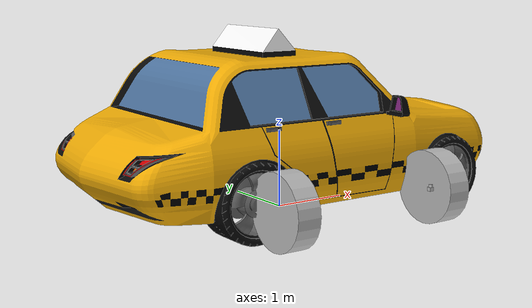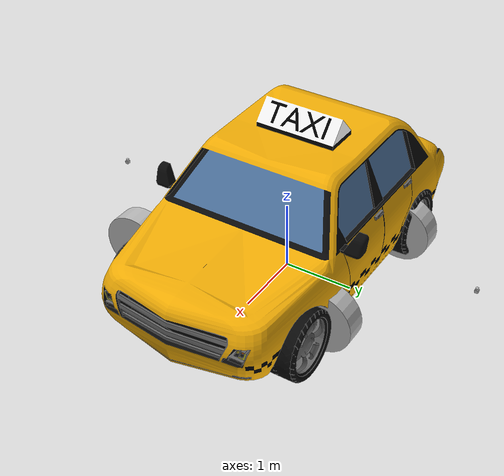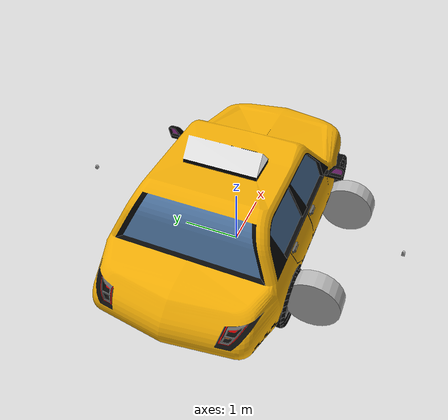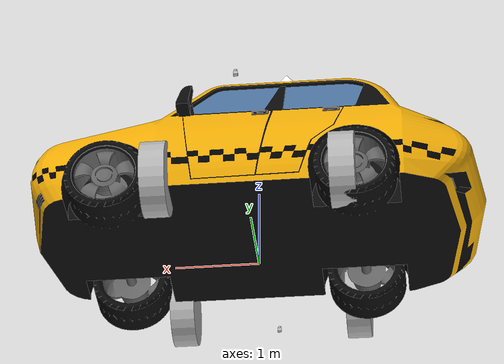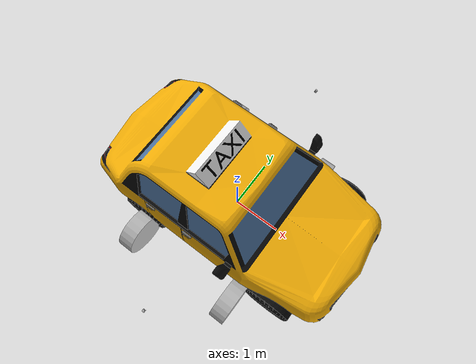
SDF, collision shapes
<?xml version='1.0'?>
<sdf version="1.4">
<model name="taxiLaser">
  <pose>0 0 0 0 0 0</pose>
  <static>false</static>
    <link name="car">
    	<pose>0 0 0.749745 0 0 0</pose>
      <collision name="collision">
            <geometry>
              <mesh>
            		<uri>model://taxiLaser/meshes/model.dae</uri>
          		</mesh>
          </geometry>
     </collision>
      <visual name="visual">
        <geometry>
          <mesh>
            <uri>model://taxiLaser/meshes/model.dae</uri>
        </mesh>
      </geometry>
    </visual>
  </link>
    <link name="front_right_wheel">
        <pose>1.1 -1.70000 0.448000 0 1.5707 0</pose>
         <inertial>
        <mass>12</mass>
        <inertia>
          <ixx>0.5</ixx>
          <ixy>0.0</ixy>
          <iyy>0.5</iyy>
          <ixz>0.0</ixz>
          <iyz>0.0</iyz>
          <izz>1.0</izz>
      </inertia>
    </inertial>
        <collision name="collision">
          <geometry>
            <cylinder>
              <radius>.45</radius>
              <length>.3</length>
          </cylinder>
        </geometry>
      </collision>
        <visual name="visual">
          <geometry>
            <cylinder>
              <radius>.45</radius>
              <length>.3</length>
          </cylinder>
        </geometry>
      </visual>
    </link>
      <link name="front_left_wheel">
        <pose>-1.100000 -1.70000 0.448000 0 1.5707 0</pose>
        <inertial>
        <mass>12</mass>
        <inertia>
          <ixx>0.5</ixx>
          <ixy>0.0</ixy>
          <iyy>0.5</iyy>
          <ixz>0.0</ixz>
          <iyz>0.0</iyz>
          <izz>1.0</izz>
      </inertia>
    </inertial>
        <collision name="collision">
          <geometry>
            <cylinder>
              <radius>.45</radius>
              <length>.3</length>
          </cylinder>
        </geometry>

      </collision>
        <visual name="visual">
          <geometry>
            <cylinder>
              <radius>.45</radius>
              <length>.3</length>
          </cylinder>
        </geometry>
      </visual>
    </link>

      <link name="front_left_steering_wheel_block">
        <pose>-1.100000 -1.70000 0.448000 0 1.5707 0</pose>
        <inertial>
        <mass>1</mass>
        <inertia>
          <ixx>1.0</ixx>
          <ixy>0.0</ixy>
          <iyy>1.0</iyy>
          <ixz>0.0</ixz>
          <iyz>0.0</iyz>
          <izz>1.0</izz>
      </inertia>
    </inertial>
        <collision name="collision">
          <geometry>
            <cylinder>
              <radius>0.05</radius>
              <length>0.1</length>
          </cylinder>
        </geometry>
      </collision>
        <visual name="visual">
          <geometry>
            <cylinder>
              <radius>0.05</radius>
              <length>0.1</length>
          </cylinder>
        </geometry>
      </visual>
		</link>

        <link name="front_right_steering_wheel_block">
        <pose>1.100000 -1.70000 0.448000 0 1.5707 0</pose>
        <inertial>
        <mass>1</mass>
        <inertia>
          <ixx>1.0</ixx>
          <ixy>0.0</ixy>
          <iyy>1.0</iyy>
          <ixz>0.0</ixz>
          <iyz>0.0</iyz>
          <izz>1.0</izz>
      </inertia>
    </inertial>
        <collision name="collision">
          <geometry>
            <cylinder>
              <radius>0.05</radius>
              <length>0.1</length>
          </cylinder>
        </geometry>
      </collision>
        <visual name="visual">
          <geometry>
            <cylinder>
              <radius>0.05</radius>
              <length>0.1</length>
          </cylinder>
        </geometry>
      </visual>
    </link>

      <link name="rear_left_wheel">
        <pose>1.1 1.242288 0.448000 0 1.5707 0</pose>
         <inertial>
        <mass>12</mass>
        <inertia>
          <ixx>0.5</ixx>
          <ixy>0.0</ixy>
          <iyy>0.5</iyy>
          <ixz>0.0</ixz>
          <iyz>0.0</iyz>
          <izz>1.0</izz>
      </inertia>
      </inertial>
        <collision name="collision">
          <geometry>
            <cylinder>
              <radius>.45</radius>
              <length>.3</length>
          </cylinder>
        </geometry>
          <max_contacts>1</max_contacts>
        <surface>
          <friction>
            <ode>
              <mu>1.0</mu>
              <mu2>1.0</mu2>
              <fdir1>0 0 1</fdir1>
              <slip1>0.0</slip1>
              <slip2>0.0</slip2>
          </ode>
        </friction>
          <contact>
            <ode>
              <min_depth>0.005</min_depth>
              <kp>1e8</kp>
          </ode>
        </contact>
      </surface>
      </collision>
        <visual name="visual">
          <geometry>
            <cylinder>
              <radius>.45</radius>
              <length>.3</length>
          </cylinder>
        </geometry>
      </visual>
    </link>

      <link name="rear_right_wheel">
        <pose>-1.1 1.242288 0.448000 0 1.5707 0</pose>
         <inertial>
        <mass>12</mass>
        <inertia>
          <ixx>0.5</ixx>
          <ixy>0.0</ixy>
          <iyy>0.5</iyy>
          <ixz>0.0</ixz>
          <iyz>0.0</iyz>
          <izz>1.0</izz>
      </inertia>
      </inertial>
        <collision name="collision">
          <geometry>
            <cylinder>
              <radius>.45</radius>
              <length>.3</length>
          </cylinder>
        </geometry>
          <max_contacts>1</max_contacts>
        <surface>
          <friction>
            <ode>
              <mu>1.0</mu>
              <mu2>1.0</mu2>
              <fdir1>0 0 1</fdir1>
              <slip1>0.0</slip1>
              <slip2>0.0</slip2>
          </ode>
        </friction>
          <contact>
            <ode>
              <min_depth>0.005</min_depth>
              <kp>1e8</kp>
          </ode>
        </contact>
      </surface>
      </collision>
        <visual name="visual">
          <geometry>
            <cylinder>
              <radius>.45</radius>
              <length>.3</length>
          </cylinder>
        </geometry>
      </visual>
    </link>

<link name='laser1'>
        <pose>0.000000 -2.790000 0.772000 0.000000 0.000000 -1.570000</pose>
        <gravity>0</gravity>
        <inertial>
          <mass>0.100000</mass>
          <inertia>
            <ixx>1.000000</ixx>
            <ixy>0.000000</ixy>
            <ixz>0.000000</ixz>
            <iyy>1.000000</iyy>
            <iyz>0.000000</iyz>
            <izz>1.000000</izz>
        </inertia>
      </inertial>
        <visual name='visual'>
          <geometry>
            <mesh>
              <uri>model://hokuyo/meshes/hokuyo.dae</uri>
          </mesh>
        </geometry>
      </visual>
        <collision name='collision-base'>
          <pose>0.000000 0.000000 -0.014500 0.000000 0.000000 0.000000</pose>
          <geometry>
            <box>
              <size>0.050000 0.050000 0.041000</size>
          </box>
        </geometry>
          <max_contacts>10</max_contacts>
          <surface>
            <bounce/>
            <friction>
              <ode/>
          </friction>
            <contact>
              <ode/>
          </contact>
        </surface>
      </collision>
        <collision name='collision-top'>
          <pose>0.000000 0.000000 0.020500 0.000000 0.000000 0.000000</pose>
          <geometry>
            <cylinder>
              <radius>0.021000</radius>
              <length>0.029000</length>
          </cylinder>
        </geometry>
          <max_contacts>10</max_contacts>
          <surface>
            <bounce/>
            <friction>
              <ode/>
          </friction>
            <contact>
              <ode/>
          </contact>
        </surface>
      </collision>
        <sensor name='laser1' type='ray'>
          <ray>
            <scan>
              <horizontal>
                <samples>180</samples>
                <resolution>1.000000</resolution>
                <min_angle>-1.570000</min_angle>
                <max_angle>1.570000</max_angle>
            </horizontal>
          </scan>
            <range>
              <min>0.080000</min>
              <max>10.000000</max>
              <resolution>0.010000</resolution>
          </range>
        </ray>
          <update_rate>20.000000</update_rate>
          <plugin name='laser1' filename='liblaserF1.so'/>
          <always_on>1</always_on>
          <visualize>1</visualize>
      </sensor>
        <velocity_decay>
          <linear>0.000000</linear>
          <angular>0.000000</angular>
      </velocity_decay>
        <self_collide>0</self_collide>
        <kinematic>0</kinematic>
    </link>

<link name='laser2'>
        <pose>0.000000 2.790000 0.772000 0.000000 0.000000 1.570000</pose>
        <gravity>0</gravity>
        <inertial>
          <mass>0.100000</mass>
          <inertia>
            <ixx>1.000000</ixx>
            <ixy>0.000000</ixy>
            <ixz>0.000000</ixz>
            <iyy>1.000000</iyy>
            <iyz>0.000000</iyz>
            <izz>1.000000</izz>
        </inertia>
      </inertial>
        <visual name='visual'>
          <geometry>
            <mesh>
              <uri>model://hokuyo/meshes/hokuyo.dae</uri>
          </mesh>
        </geometry>
      </visual>
        <collision name='collision-base'>
          <pose>0.000000 0.000000 -0.014500 0.000000 0.000000 0.000000</pose>
          <geometry>
            <box>
              <size>0.050000 0.050000 0.041000</size>
          </box>
        </geometry>
          <max_contacts>10</max_contacts>
          <surface>
            <bounce/>
            <friction>
              <ode/>
          </friction>
            <contact>
              <ode/>
          </contact>
        </surface>
      </collision>
        <collision name='collision-top'>
          <pose>0.000000 0.000000 0.020500 0.000000 0.000000 0.000000</pose>
          <geometry>
            <cylinder>
              <radius>0.021000</radius>
              <length>0.029000</length>
          </cylinder>
        </geometry>
          <max_contacts>10</max_contacts>
          <surface>
            <bounce/>
            <friction>
              <ode/>
          </friction>
            <contact>
              <ode/>
          </contact>
        </surface>
      </collision>
        <sensor name='laser2' type='ray'>
          <ray>
            <scan>
              <horizontal>
                <samples>180</samples>
                <resolution>1.000000</resolution>
                <min_angle>-1.570000</min_angle>
                <max_angle>1.570000</max_angle>
            </horizontal>
          </scan>
            <range>
              <min>0.080000</min>
              <max>10.000000</max>
              <resolution>0.010000</resolution>
          </range>
        </ray>
          <update_rate>20.000000</update_rate>
          <plugin name='laser2' filename='liblaserF1.so'/>
          <always_on>1</always_on>
          <visualize>1</visualize>
      </sensor>
        <velocity_decay>
          <linear>0.000000</linear>
          <angular>0.000000</angular>
      </velocity_decay>
        <self_collide>0</self_collide>
        <kinematic>0</kinematic>
    </link>

<link name='laser3'>
        <pose>-1.600000 -0.190000 0.772000 0.000000 0.000000 -3.140000</pose>
        <gravity>0</gravity>
        <inertial>
          <mass>0.100000</mass>
          <inertia>
            <ixx>1.000000</ixx>
            <ixy>0.000000</ixy>
            <ixz>0.000000</ixz>
            <iyy>1.000000</iyy>
            <iyz>0.000000</iyz>
            <izz>1.000000</izz>
        </inertia>
      </inertial>
        <visual name='visual'>
          <geometry>
            <mesh>
              <uri>model://hokuyo/meshes/hokuyo.dae</uri>
          </mesh>
        </geometry>
      </visual>
        <collision name='collision-base'>
          <pose>0.000000 0.000000 -0.014500 0.000000 0.000000 0.000000</pose>
          <geometry>
            <box>
              <size>0.050000 0.050000 0.041000</size>
          </box>
        </geometry>
          <max_contacts>10</max_contacts>
          <surface>
            <bounce/>
            <friction>
              <ode/>
          </friction>
            <contact>
              <ode/>
          </contact>
        </surface>
      </collision>
        <collision name='collision-top'>
          <pose>0.000000 0.000000 0.020500 0.000000 0.000000 0.000000</pose>
          <geometry>
            <cylinder>
              <radius>0.021000</radius>
              <length>0.029000</length>
          </cylinder>
        </geometry>
          <max_contacts>10</max_contacts>
          <surface>
            <bounce/>
            <friction>
              <ode/>
          </friction>
            <contact>
              <ode/>
          </contact>
        </surface>
      </collision>
        <sensor name='laser3' type='ray'>
          <ray>
            <scan>
              <horizontal>
                <samples>180</samples>
                <resolution>1.000000</resolution>
                <min_angle>-1.570000</min_angle>
                <max_angle>1.570000</max_angle>
            </horizontal>
          </scan>
            <range>
              <min>0.080000</min>
              <max>10.000000</max>
              <resolution>0.010000</resolution>
          </range>
        </ray>
          <update_rate>20.000000</update_rate>
          <plugin name='laser3' filename='liblaserF1.so'/>
          <always_on>1</always_on>
          <visualize>1</visualize>
      </sensor>
        <velocity_decay>
          <linear>0.000000</linear>
          <angular>0.000000</angular>
      </velocity_decay>
        <self_collide>0</self_collide>
        <kinematic>0</kinematic>
    </link>

	  <joint type="revolute" name="laser1_joint">
        <pose>0 0 0 0 0 0</pose>
        <child>laser1</child>
        <parent>car</parent>
        <axis>
          <xyz>0 0 0</xyz>
      </axis>
    </joint>

	  <joint type="revolute" name="laser2_joint">
        <pose>0 0 0 0 0 0</pose>
        <child>laser2</child>
        <parent>car</parent>
        <axis>
          <xyz>0 0 0</xyz>
      </axis>
    </joint>

	  <joint type="revolute" name="laser3_joint">
        <pose>0 0 0 0 0 0</pose>
        <child>laser3</child>
        <parent>car</parent>
        <axis>
          <xyz>0 0 0</xyz>
      </axis>
    </joint>

       <joint type="revolute" name="front_left_wheel_hinge">
        <pose>0 0 0 0 0 0</pose>
        <child>front_left_wheel</child>
        <parent>front_left_steering_wheel_block</parent>
        <axis>
          <xyz>1 0 0</xyz>
      </axis>
    </joint>
      <joint type="revolute" name="front_right_wheel_hinge">
        <pose>0 0 0 0 0 0</pose>
        <child>front_right_wheel</child>
        <parent>front_right_steering_wheel_block</parent>
        +
        <axis>
          <xyz>1 0 0</xyz>
      </axis>
    </joint>

      <joint type="revolute" name="front_left_steering_wheel">
        <pose>0 0 0 0 0 0</pose>
        <child>front_left_steering_wheel_block</child>
        <parent>car</parent>
        <axis>
        	 <xyz>0 0 1</xyz>
  	 			<dynamics>
          		<damping>500.0</damping>
        		</dynamics>
        	 <limit>
        	 		<lower>-0.52359</lower>
              <upper>0.52359</upper>
        </limit>
      </axis>
        <physics>
        <ode>
          <cfm_damping>1</cfm_damping>
          <limit>
            <cfm>0.000000</cfm>
            <erp>0.900000</erp>
        </limit>
      </ode>
    </physics>
    </joint>
      <joint type="revolute" name="front_right_steering_wheel">
        <pose>0 0 0 0 0 0</pose>
        <child>front_right_steering_wheel_block</child>
        <parent>car</parent>
        <axis>
        <xyz>0 0 1</xyz>
        		<dynamics>
          		<damping>500.0</damping>
        		</dynamics>
     		 <limit>
              <lower>-0.52359</lower>
              <upper>0.52359</upper>
        </limit>
      </axis>
        <physics>
        <ode>
          <cfm_damping>1</cfm_damping>
          <limit>
            <cfm>0.000000</cfm>
            <erp>0.900000</erp>
        </limit>
      </ode>
    </physics>
    </joint>

      <joint type="revolute" name="rear_right_wheel_hinge">
        <pose>0 0 0 0 0 0</pose>
        <child>rear_right_wheel</child>
        <parent>car</parent>
        <axis>
          <xyz>1 0 0</xyz>
      </axis>
    </joint>

      <joint type="revolute" name="rear_left_wheel_hinge">
        <pose>0 0 0 0 0 0</pose>
        <child>rear_left_wheel</child>
        <parent>car</parent>
        <axis>
          <xyz>1 0 0</xyz>
      </axis>
    </joint>
      <plugin name="carMotors" filename="libcarMotors.so">
        <front_right_joint>front_right_wheel_hinge</front_right_joint>
      	<front_left_joint>front_left_wheel_hinge</front_left_joint>
			  <front_right_steering_joint>front_right_steering_wheel</front_right_steering_joint>
			  <front_left_steering_joint>front_left_steering_wheel</front_left_steering_joint>
    </plugin>
     <plugin name="pose3d" filename="libcarPose3D.so"/>
</model>
</sdf>
